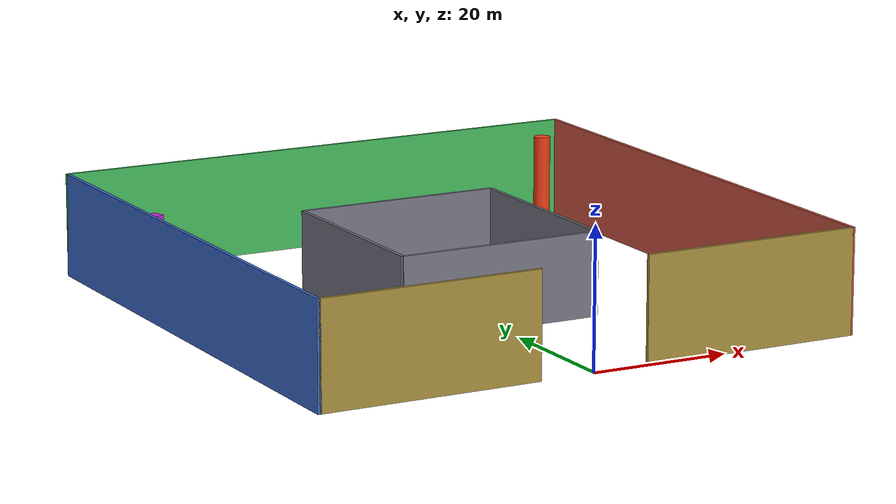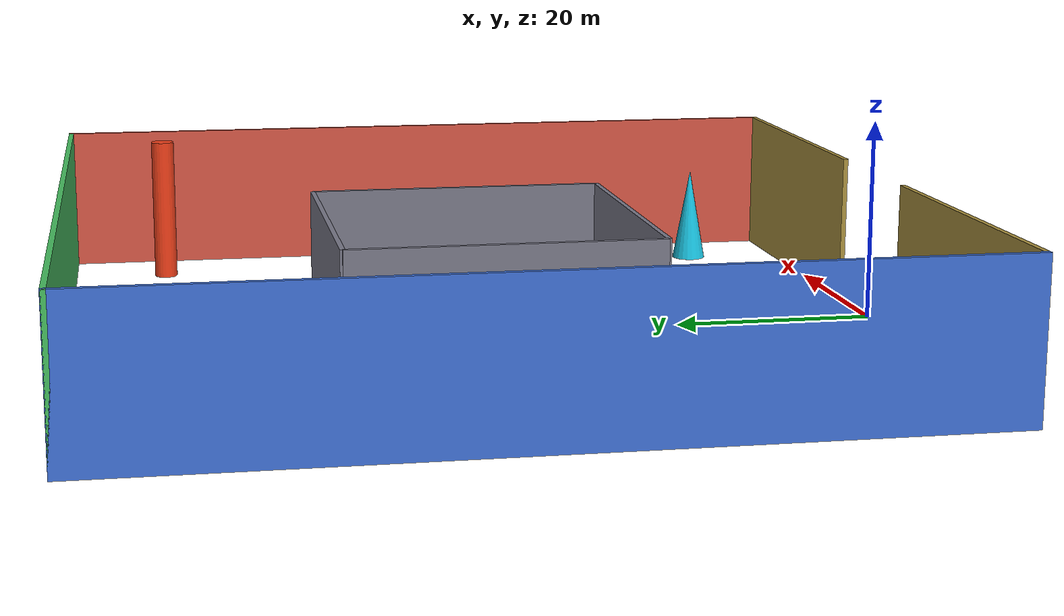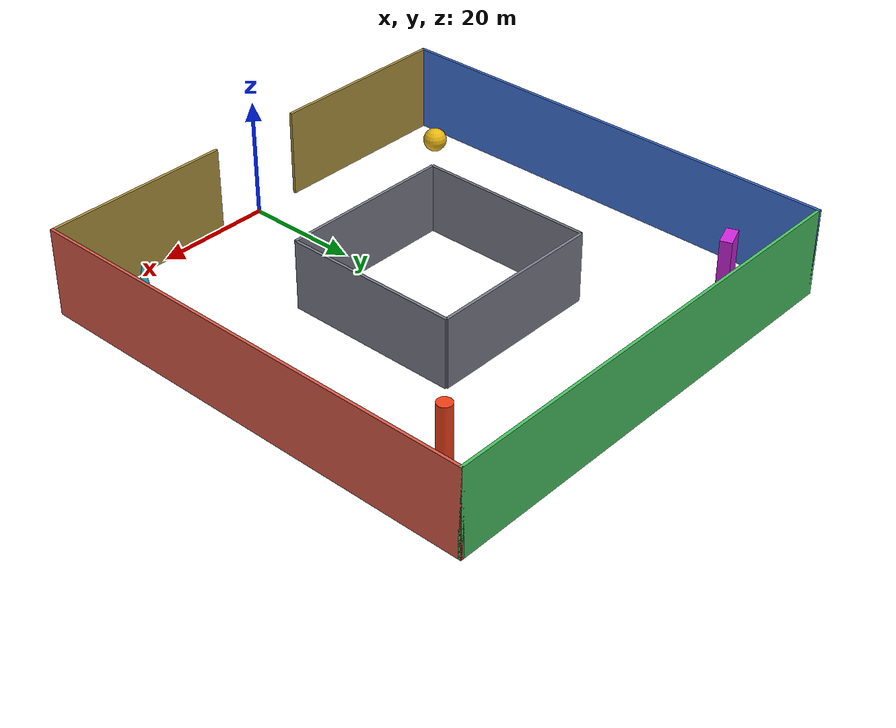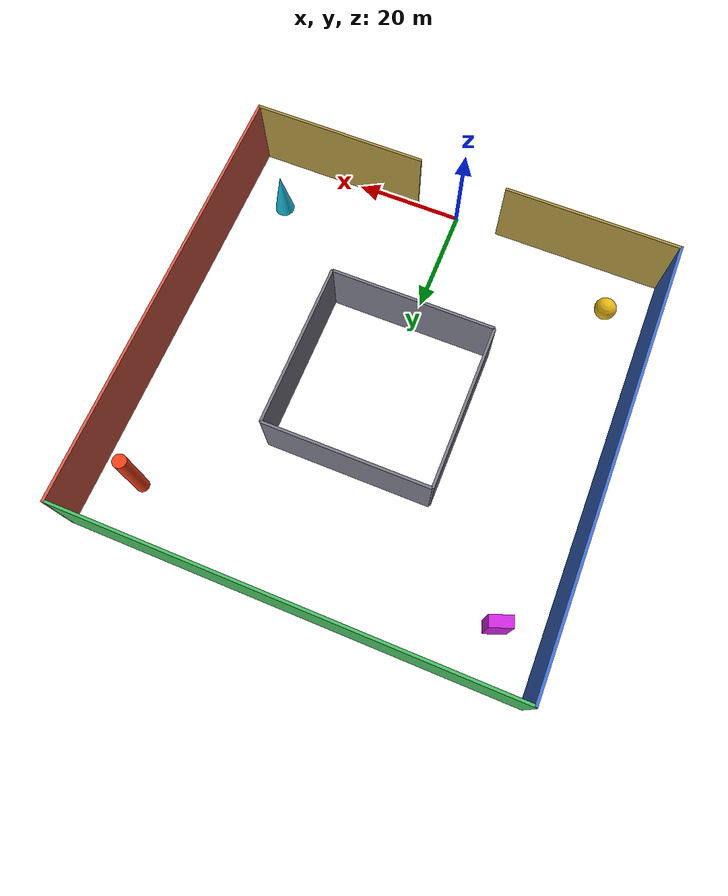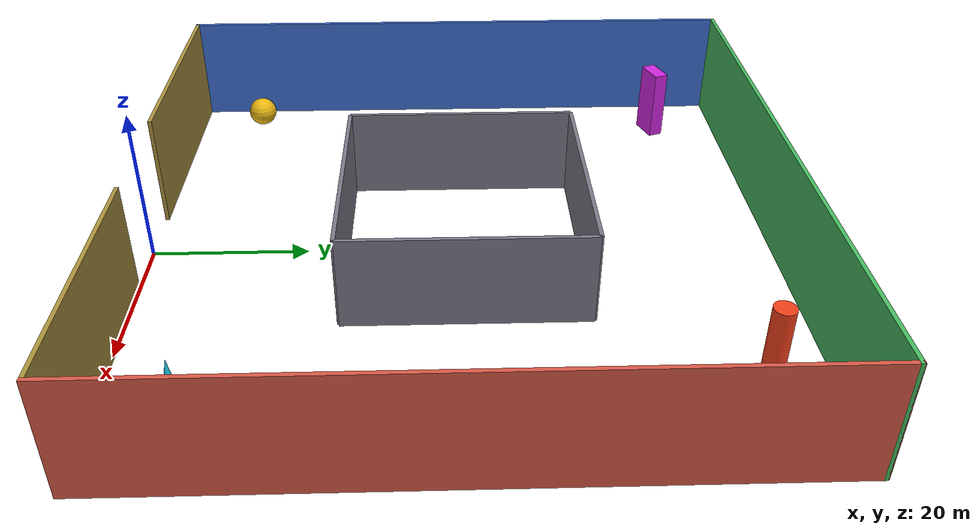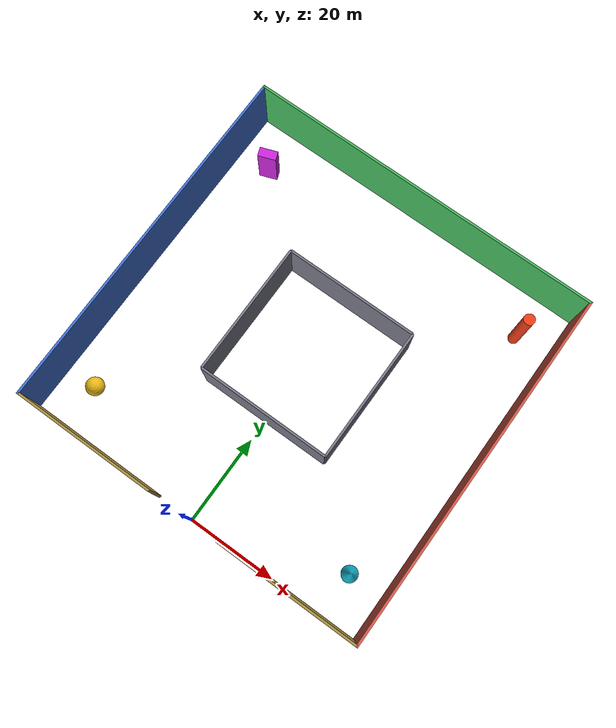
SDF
<?xml version="1.0" encoding="UTF-8"?>
<sdf version="1.9">
  <model name="map_loop_arena">
    <static>true</static>
    <link name="arena_link">
      <collision name="outer_west_collision">
        <pose>-40 40 7.5 0 0 0</pose>
        <geometry><box><size>0.5 80.5 15</size></box></geometry>
      </collision>
      <visual name="outer_west_visual">
        <pose>-40 40 7.5 0 0 0</pose>
        <geometry><box><size>0.5 80.5 15</size></box></geometry>
        <material><ambient>0.18 0.32 0.62 1</ambient><diffuse>0.25 0.45 0.85 1</diffuse></material>
      </visual>
      <collision name="outer_east_collision">
        <pose>40 40 7.5 0 0 0</pose>
        <geometry><box><size>0.5 80.5 15</size></box></geometry>
      </collision>
      <visual name="outer_east_visual">
        <pose>40 40 7.5 0 0 0</pose>
        <geometry><box><size>0.5 80.5 15</size></box></geometry>
        <material><ambient>0.62 0.25 0.20 1</ambient><diffuse>0.85 0.35 0.28 1</diffuse></material>
      </visual>
      <collision name="outer_north_collision">
        <pose>0 80 7.5 0 0 0</pose>
        <geometry><box><size>80.5 0.5 15</size></box></geometry>
      </collision>
      <visual name="outer_north_visual">
        <pose>0 80 7.5 0 0 0</pose>
        <geometry><box><size>80.5 0.5 15</size></box></geometry>
        <material><ambient>0.20 0.55 0.28 1</ambient><diffuse>0.28 0.75 0.38 1</diffuse></material>
      </visual>
      <collision name="outer_south_west_collision">
        <pose>-24 0 7.5 0 0 0</pose>
        <geometry><box><size>32 0.5 15</size></box></geometry>
      </collision>
      <visual name="outer_south_west_visual">
        <pose>-24 0 7.5 0 0 0</pose>
        <geometry><box><size>32 0.5 15</size></box></geometry>
        <material><ambient>0.45 0.38 0.18 1</ambient><diffuse>0.68 0.58 0.25 1</diffuse></material>
      </visual>
      <collision name="outer_south_east_collision">
        <pose>24 0 7.5 0 0 0</pose>
        <geometry><box><size>32 0.5 15</size></box></geometry>
      </collision>
      <visual name="outer_south_east_visual">
        <pose>24 0 7.5 0 0 0</pose>
        <geometry><box><size>32 0.5 15</size></box></geometry>
        <material><ambient>0.45 0.38 0.18 1</ambient><diffuse>0.68 0.58 0.25 1</diffuse></material>
      </visual>

      <!-- Central island: x=[-15,15], y=[25,55] m. -->
      <collision name="island_west_collision">
        <pose>-15 40 6 0 0 0</pose>
        <geometry><box><size>0.5 30 12</size></box></geometry>
      </collision>
      <visual name="island_west_visual">
        <pose>-15 40 6 0 0 0</pose>
        <geometry><box><size>0.5 30 12</size></box></geometry>
        <material><ambient>0.30 0.30 0.34 1</ambient><diffuse>0.48 0.48 0.54 1</diffuse></material>
      </visual>
      <collision name="island_east_collision">
        <pose>15 40 6 0 0 0</pose>
        <geometry><box><size>0.5 30 12</size></box></geometry>
      </collision>
      <visual name="island_east_visual">
        <pose>15 40 6 0 0 0</pose>
        <geometry><box><size>0.5 30 12</size></box></geometry>
        <material><ambient>0.30 0.30 0.34 1</ambient><diffuse>0.48 0.48 0.54 1</diffuse></material>
      </visual>
      <collision name="island_south_collision">
        <pose>0 25 6 0 0 0</pose>
        <geometry><box><size>30 0.5 12</size></box></geometry>
      </collision>
      <visual name="island_south_visual">
        <pose>0 25 6 0 0 0</pose>
        <geometry><box><size>30 0.5 12</size></box></geometry>
        <material><ambient>0.30 0.30 0.34 1</ambient><diffuse>0.48 0.48 0.54 1</diffuse></material>
      </visual>
      <collision name="island_north_collision">
        <pose>0 55 6 0 0 0</pose>
        <geometry><box><size>30 0.5 12</size></box></geometry>
      </collision>
      <visual name="island_north_visual">
        <pose>0 55 6 0 0 0</pose>
        <geometry><box><size>30 0.5 12</size></box></geometry>
        <material><ambient>0.30 0.30 0.34 1</ambient><diffuse>0.48 0.48 0.54 1</diffuse></material>
      </visual>

      <!-- Asymmetric landmarks reduce square-course geometric ambiguity. -->
      <collision name="north_east_tower_collision">
        <pose>32 70 7.5 0 0 0</pose>
        <geometry><cylinder><radius>1.2</radius><length>15</length></cylinder></geometry>
      </collision>
      <visual name="north_east_tower_visual">
        <pose>32 70 7.5 0 0 0</pose>
        <geometry><cylinder><radius>1.2</radius><length>15</length></cylinder></geometry>
        <material><ambient>0.75 0.18 0.08 1</ambient><diffuse>0.95 0.25 0.10 1</diffuse></material>
      </visual>
      <collision name="north_west_block_collision">
        <pose>-32 70 5 0 0 0.35</pose>
        <geometry><box><size>4 2 10</size></box></geometry>
      </collision>
      <visual name="north_west_block_visual">
        <pose>-32 70 5 0 0 0.35</pose>
        <geometry><box><size>4 2 10</size></box></geometry>
        <material><ambient>0.58 0.10 0.62 1</ambient><diffuse>0.82 0.15 0.88 1</diffuse></material>
      </visual>
      <collision name="south_east_cone_collision">
        <pose>32 10 5 0 0 0</pose>
        <geometry><cone><radius>1.8</radius><length>10</length></cone></geometry>
      </collision>
      <visual name="south_east_cone_visual">
        <pose>32 10 5 0 0 0</pose>
        <geometry><cone><radius>1.8</radius><length>10</length></cone></geometry>
        <material><ambient>0.08 0.55 0.65 1</ambient><diffuse>0.10 0.78 0.90 1</diffuse></material>
      </visual>
      <collision name="south_west_sphere_collision">
        <pose>-32 10 4 0 0 0</pose>
        <geometry><sphere><radius>2</radius></sphere></geometry>
      </collision>
      <visual name="south_west_sphere_visual">
        <pose>-32 10 4 0 0 0</pose>
        <geometry><sphere><radius>2</radius></sphere></geometry>
        <material><ambient>0.68 0.52 0.06 1</ambient><diffuse>0.92 0.72 0.08 1</diffuse></material>
      </visual>
    </link>
  </model>
</sdf>
